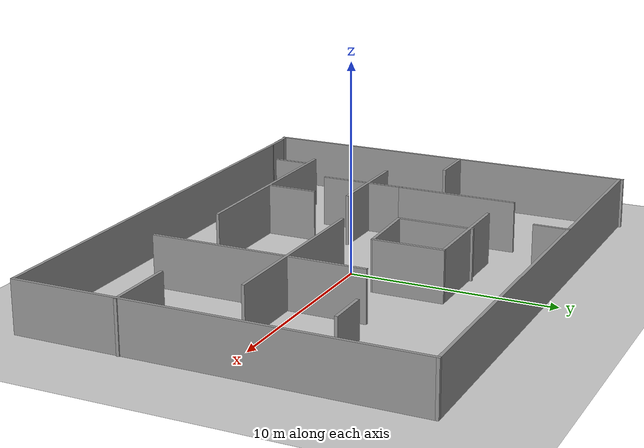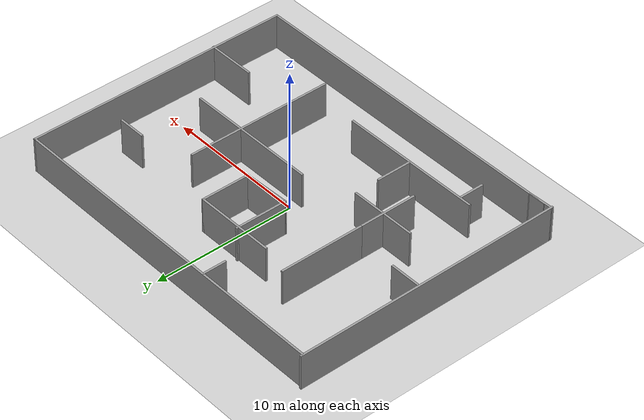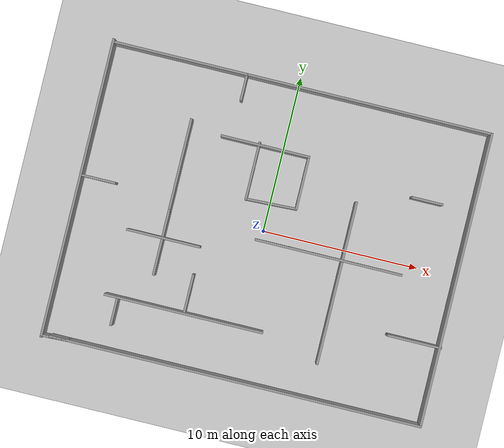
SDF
<sdf version="1.7">
 <world name="default">
  <light name="sun" type="directional">
   <pose>0 0 10 0 -0 0</pose>
   <diffuse>0.8 0.8 0.8 1</diffuse>
   <specular>0.2 0.2 0.2 1</specular>
   <attenuation>
    <range>1000</range>
    <constant>0.9</constant>
    <linear>0.01</linear>
    <quadratic>0.001</quadratic>
   </attenuation>
   <direction>-0.5 0.1 -0.9</direction>
   <spot><inner_angle>0</inner_angle><outer_angle>0</outer_angle><falloff>0</falloff></spot>
  </light>
  <model name="ground_plane">
   <static>1</static>
   <link name="link">
    <collision name="collision">
     <geometry><plane><normal>0 0 1</normal><size>100 100</size></plane></geometry>
     <surface><friction><ode><mu>100</mu><mu2>50</mu2></ode></friction></surface>
    </collision>
    <visual name="visual">
     <cast_shadows>0</cast_shadows>
     <geometry><plane><normal>0 0 1</normal><size>100 100</size></plane></geometry>
     <material>
      <script><uri>file://media/materials/scripts/gazebo.material</uri><name>Gazebo/Grey</name></script>
     </material>
    </visual>
   </link>
  </model>
  <gravity>0 0 -9.8</gravity>
  <magnetic_field>6e-06 2.3e-05 -4.2e-05</magnetic_field>
  <atmosphere type="adiabatic"/>
  <physics type="ode">
   <max_step_size>0.001</max_step_size>
   <real_time_factor>1</real_time_factor>
   <real_time_update_rate>1000</real_time_update_rate>
  </physics>
  <scene><ambient>0.4 0.4 0.4 1</ambient><background>0.7 0.7 0.7 1</background><shadows>1</shadows></scene>
  <spherical_coordinates>
   <surface_model>EARTH_WGS84</surface_model>
   <latitude_deg>0</latitude_deg>
   <longitude_deg>0</longitude_deg>
   <elevation>0</elevation>
   <heading_deg>0</heading_deg>
  </spherical_coordinates>
  <model name="Untitled1">
   <pose>0.267557 -0.137451 0 0 -0 0</pose>
   <link name="Wall_0">
    <collision name="Wall_0_Collision">
     <geometry><box><size>4.75 0.15 2.5</size></box></geometry>
     <pose>0 0 1.25 0 -0 0</pose>
    </collision>
    <visual name="Wall_0_Visual">
     <pose>0 0 1.25 0 -0 0</pose>
     <geometry><box><size>4.75 0.15 2.5</size></box></geometry>
     <material>
      <script><uri>file://media/materials/scripts/gazebo.material</uri><name>Gazebo/Grey</name></script>
      <ambient>1 1 1 1</ambient>
     </material>
     <meta><layer>0</layer></meta>
    </visual>
    <pose>-6.26484 -1.78043 0 0 -0 0</pose>
   </link>
   <link name="Wall_12">
    <collision name="Wall_12_Collision">
     <geometry><box><size>24 0.15 2.5</size></box></geometry>
     <pose>0 0 1.25 0 -0 0</pose>
    </collision>
    <visual name="Wall_12_Visual">
     <pose>0 0 1.25 0 -0 0</pose>
     <geometry><box><size>24 0.15 2.5</size></box></geometry>
     <material>
      <script><uri>file://media/materials/scripts/gazebo.material</uri><name>Gazebo/Grey</name></script>
      <ambient>1 1 1 1</ambient>
     </material>
     <meta><layer>0</layer></meta>
    </visual>
    <pose>0.253628 -9.42764 0 0 -0 0</pose>
   </link>
   <link name="Wall_13">
    <collision name="Wall_13_Collision">
     <geometry><box><size>19 0.15 2.5</size></box></geometry>
     <pose>0 0 1.25 0 -0 0</pose>
    </collision>
    <visual name="Wall_13_Visual">
     <pose>0 0 1.25 0 -0 0</pose>
     <geometry><box><size>19 0.15 2.5</size></box></geometry>
     <material>
      <script><uri>file://media/materials/scripts/gazebo.material</uri><name>Gazebo/Grey</name></script>
      <ambient>1 1 1 1</ambient>
     </material>
     <meta><layer>0</layer></meta>
    </visual>
    <pose>12.1786 -0.002639 0 0 -0 1.5708</pose>
   </link>
   <link name="Wall_15">
    <collision name="Wall_15_Collision">
     <geometry><box><size>19.25 0.15 2.5</size></box></geometry>
     <pose>0 0 1.25 0 -0 0</pose>
    </collision>
    <visual name="Wall_15_Visual">
     <pose>0 0 1.25 0 -0 0</pose>
     <geometry><box><size>19.25 0.15 2.5</size></box></geometry>
     <material>
      <script><uri>file://media/materials/scripts/gazebo.material</uri><name>Gazebo/Grey</name></script>
      <ambient>1 1 1 1</ambient>
     </material>
     <meta><layer>0</layer></meta>
    </visual>
    <pose>-12.2326 -0 0 0 -0 -1.5708</pose>
   </link>
   <link name="Wall_16">
    <collision name="Wall_16_Collision">
     <geometry><box><size>1.81231 0.15 2.5</size></box></geometry>
     <pose>0 0 1.25 0 -0 0</pose>
    </collision>
    <visual name="Wall_16_Visual">
     <pose>0 0 1.25 0 -0 0</pose>
     <geometry><box><size>1.81231 0.15 2.5</size></box></geometry>
     <material>
      <script><uri>file://media/materials/scripts/gazebo.material</uri><name>Gazebo/Grey</name></script>
      <ambient>1 1 1 1</ambient>
     </material>
     <meta><layer>0</layer></meta>
    </visual>
    <pose>-11.402 -9.45823 0 0 -0 0.036813</pose>
   </link>
   <link name="Wall_18">
    <collision name="Wall_18_Collision">
     <geometry><box><size>2.25 0.15 2.5</size></box></geometry>
     <pose>0 0 1.25 0 -0 0</pose>
    </collision>
    <visual name="Wall_18_Visual">
     <pose>0 0 1.25 0 -0 0</pose>
     <geometry><box><size>2.25 0.15 2.5</size></box></geometry>
     <material>
      <script><uri>file://media/materials/scripts/gazebo.material</uri><name>Gazebo/Grey</name></script>
      <ambient>1 1 1 1</ambient>
     </material>
     <meta><layer>0</layer></meta>
    </visual>
    <pose>-11.1108 0.850678 0 0 -0 0</pose>
   </link>
   <link name="Wall_2">
    <collision name="Wall_2_Collision">
     <geometry><box><size>4.25 0.15 2.5</size></box></geometry>
     <pose>0 0 1.25 0 -0 0</pose>
    </collision>
    <visual name="Wall_2_Visual">
     <pose>0 0 1.25 0 -0 0</pose>
     <geometry><box><size>4.25 0.15 2.5</size></box></geometry>
     <material>
      <script><uri>file://media/materials/scripts/gazebo.material</uri><name>Gazebo/Grey</name></script>
      <ambient>1 1 1 1</ambient>
     </material>
     <meta><layer>0</layer></meta>
    </visual>
    <pose>-6.31951 -2.05884 0 0 -0 -1.5708</pose>
   </link>
   <link name="Wall_20">
    <collision name="Wall_20_Collision">
     <geometry><box><size>9.5 0.15 2.5</size></box></geometry>
     <pose>0 0 1.25 0 -0 0</pose>
    </collision>
    <visual name="Wall_20_Visual">
     <pose>0 0 1.25 0 -0 0</pose>
     <geometry><box><size>9.5 0.15 2.5</size></box></geometry>
     <material>
      <script><uri>file://media/materials/scripts/gazebo.material</uri><name>Gazebo/Grey</name></script>
      <ambient>1 1 1 1</ambient>
     </material>
     <meta><layer>0</layer></meta>
    </visual>
    <pose>4.07729 -0.495292 0 0 -0 0</pose>
   </link>
   <link name="Wall_22">
    <collision name="Wall_22_Collision">
     <geometry><box><size>10.5 0.15 2.5</size></box></geometry>
     <pose>0 0 1.25 0 -0 0</pose>
    </collision>
    <visual name="Wall_22_Visual">
     <pose>0 0 1.25 0 -0 0</pose>
     <geometry><box><size>10.5 0.15 2.5</size></box></geometry>
     <material>
      <script><uri>file://media/materials/scripts/gazebo.material</uri><name>Gazebo/Grey</name></script>
      <ambient>1 1 1 1</ambient>
     </material>
     <meta><layer>0</layer></meta>
    </visual>
    <pose>4.96971 -1.93829 0 0 -0 -1.5708</pose>
   </link>
   <link name="Wall_24">
    <collision name="Wall_24_Collision">
     <geometry><box><size>3.5 0.15 2.5</size></box></geometry>
     <pose>0 0 1.25 0 -0 0</pose>
    </collision>
    <visual name="Wall_24_Visual">
     <pose>0 0 1.25 0 -0 0</pose>
     <geometry><box><size>3.5 0.15 2.5</size></box></geometry>
     <material>
      <script><uri>file://media/materials/scripts/gazebo.material</uri><name>Gazebo/Grey</name></script>
      <ambient>1 1 1 1</ambient>
     </material>
     <meta><layer>0</layer></meta>
    </visual>
    <pose>10.5603 -4.34966 0 0 -0 0</pose>
   </link>
   <link name="Wall_26">
    <collision name="Wall_26_Collision">
     <geometry><box><size>2 0.15 2.5</size></box></geometry>
     <pose>0 0 1.25 0 -0 0</pose>
    </collision>
    <visual name="Wall_26_Visual">
     <pose>0 0 1.25 0 -0 0</pose>
     <geometry><box><size>2 0.15 2.5</size></box></geometry>
     <material>
      <script><uri>file://media/materials/scripts/gazebo.material</uri><name>Gazebo/Grey</name></script>
      <ambient>1 1 1 1</ambient>
     </material>
     <meta><layer>0</layer></meta>
    </visual>
    <pose>9.25964 4.39914 0 0 -0 0</pose>
   </link>
   <link name="Wall_28">
    <collision name="Wall_28_Collision">
     <geometry><box><size>6 0.15 2.5</size></box></geometry>
     <pose>0 0 1.25 0 -0 0</pose>
    </collision>
    <visual name="Wall_28_Visual">
     <pose>0 0 1.25 0 -0 0</pose>
     <geometry><box><size>6 0.15 2.5</size></box></geometry>
     <material>
      <script><uri>file://media/materials/scripts/gazebo.material</uri><name>Gazebo/Grey</name></script>
      <ambient>1 1 1 1</ambient>
     </material>
     <meta><layer>0</layer></meta>
    </visual>
    <pose>-6.31951 2.91616 0 0 -0 1.5708</pose>
   </link>
   <link name="Wall_30">
    <collision name="Wall_30_Collision">
     <geometry><box><size>5.75 0.15 2.5</size></box></geometry>
     <pose>0 0 1.25 0 -0 0</pose>
    </collision>
    <visual name="Wall_30_Visual">
     <pose>0 0 1.25 0 -0 0</pose>
     <geometry><box><size>5.75 0.15 2.5</size></box></geometry>
     <material>
      <script><uri>file://media/materials/scripts/gazebo.material</uri><name>Gazebo/Grey</name></script>
      <ambient>1 1 1 1</ambient>
     </material>
     <meta><layer>0</layer></meta>
    </visual>
    <pose>-1.40736 5.31685 0 0 -0 0</pose>
   </link>
   <link name="Wall_31">
    <collision name="Wall_31_Collision">
     <geometry><box><size>3.5 0.15 2.5</size></box></geometry>
     <pose>0 0 1.25 0 -0 0</pose>
    </collision>
    <visual name="Wall_31_Visual">
     <pose>0 0 1.25 0 -0 0</pose>
     <geometry><box><size>3.5 0.15 2.5</size></box></geometry>
     <material>
      <script><uri>file://media/materials/scripts/gazebo.material</uri><name>Gazebo/Grey</name></script>
      <ambient>1 1 1 1</ambient>
     </material>
     <meta><layer>0</layer></meta>
    </visual>
    <pose>1.39264 3.64185 0 0 -0 -1.5708</pose>
   </link>
   <link name="Wall_33">
    <collision name="Wall_33_Collision">
     <geometry><box><size>3.75 0.15 2.5</size></box></geometry>
     <pose>0 0 1.25 0 -0 0</pose>
    </collision>
    <visual name="Wall_33_Visual">
     <pose>0 0 1.25 0 -0 0</pose>
     <geometry><box><size>3.75 0.15 2.5</size></box></geometry>
     <material>
      <script><uri>file://media/materials/scripts/gazebo.material</uri><name>Gazebo/Grey</name></script>
      <ambient>1 1 1 1</ambient>
     </material>
     <meta><layer>0</layer></meta>
    </visual>
    <pose>-1.82132 3.63921 0 0 -0 -1.5708</pose>
   </link>
   <link name="Wall_34">
    <collision name="Wall_34_Collision">
     <geometry><box><size>3.3665 0.15 2.5</size></box></geometry>
     <pose>0 0 1.25 0 -0 0</pose>
    </collision>
    <visual name="Wall_34_Visual">
     <pose>0 0 1.25 0 -0 0</pose>
     <geometry><box><size>3.3665 0.15 2.5</size></box></geometry>
     <material>
      <script><uri>file://media/materials/scripts/gazebo.material</uri><name>Gazebo/Grey</name></script>
      <ambient>1 1 1 1</ambient>
     </material>
     <meta><layer>0</layer></meta>
    </visual>
    <pose>-0.214337 1.90303 0 0 -0 0.039693</pose>
   </link>
   <link name="Wall_36">
    <collision name="Wall_36_Collision">
     <geometry><box><size>24.5 0.15 2.5</size></box></geometry>
     <pose>0 0 1.25 0 -0 0</pose>
    </collision>
    <visual name="Wall_36_Visual">
     <pose>0 0 1.25 0 -0 0</pose>
     <geometry><box><size>24.5 0.15 2.5</size></box></geometry>
     <material>
      <script><uri>file://media/materials/scripts/gazebo.material</uri><name>Gazebo/Grey</name></script>
      <ambient>1 1 1 1</ambient>
     </material>
     <meta><layer>0</layer></meta>
    </visual>
    <pose>0.003628 9.42236 0 0 -0 3.14159</pose>
   </link>
   <link name="Wall_38">
    <collision name="Wall_38_Collision">
     <geometry><box><size>1.75 0.15 2.5</size></box></geometry>
     <pose>0 0 1.25 0 -0 0</pose>
    </collision>
    <visual name="Wall_38_Visual">
     <pose>0 0 1.25 0 -0 0</pose>
     <geometry><box><size>1.75 0.15 2.5</size></box></geometry>
     <material>
      <script><uri>file://media/materials/scripts/gazebo.material</uri><name>Gazebo/Grey</name></script>
      <ambient>1 1 1 1</ambient>
     </material>
     <meta><layer>0</layer></meta>
    </visual>
    <pose>-3.59555 8.61594 0 0 -0 -1.5708</pose>
   </link>
   <link name="Wall_4">
    <collision name="Wall_4_Collision">
     <geometry><box><size>10.25 0.15 2.5</size></box></geometry>
     <pose>0 0 1.25 0 -0 0</pose>
    </collision>
    <visual name="Wall_4_Visual">
     <pose>0 0 1.25 0 -0 0</pose>
     <geometry><box><size>10.25 0.15 2.5</size></box></geometry>
     <material>
      <script><uri>file://media/materials/scripts/gazebo.material</uri><name>Gazebo/Grey</name></script>
      <ambient>1 1 1 1</ambient>
     </material>
     <meta><layer>0</layer></meta>
    </visual>
    <pose>-3.90758 -6.0665 0 0 -0 0</pose>
   </link>
   <link name="Wall_6">
    <collision name="Wall_6_Collision">
     <geometry><box><size>2.5 0.15 2.5</size></box></geometry>
     <pose>0 0 1.25 0 -0 0</pose>
    </collision>
    <visual name="Wall_6_Visual">
     <pose>0 0 1.25 0 -0 0</pose>
     <geometry><box><size>2.5 0.15 2.5</size></box></geometry>
     <material>
      <script><uri>file://media/materials/scripts/gazebo.material</uri><name>Gazebo/Grey</name></script>
      <ambient>1 1 1 1</ambient>
     </material>
     <meta><layer>0</layer></meta>
    </visual>
    <pose>-3.88647 -4.77574 0 0 -0 -1.5708</pose>
   </link>
   <link name="Wall_8">
    <collision name="Wall_8_Collision">
     <geometry><box><size>1.75 0.15 2.5</size></box></geometry>
     <pose>0 0 1.25 0 -0 0</pose>
    </collision>
    <visual name="Wall_8_Visual">
     <pose>0 0 1.25 0 -0 0</pose>
     <geometry><box><size>1.75 0.15 2.5</size></box></geometry>
     <material>
      <script><uri>file://media/materials/scripts/gazebo.material</uri><name>Gazebo/Grey</name></script>
      <ambient>1 1 1 1</ambient>
     </material>
     <meta><layer>0</layer></meta>
    </visual>
    <pose>-8.16667 -7.00607 0 0 -0 -1.5708</pose>
   </link>
   <static>1</static>
  </model>
 </world>
</sdf>
